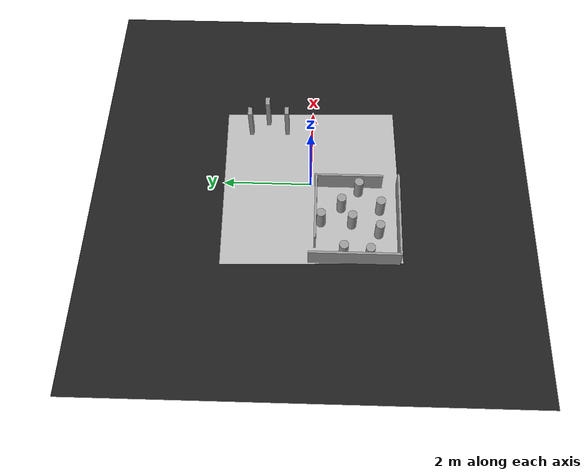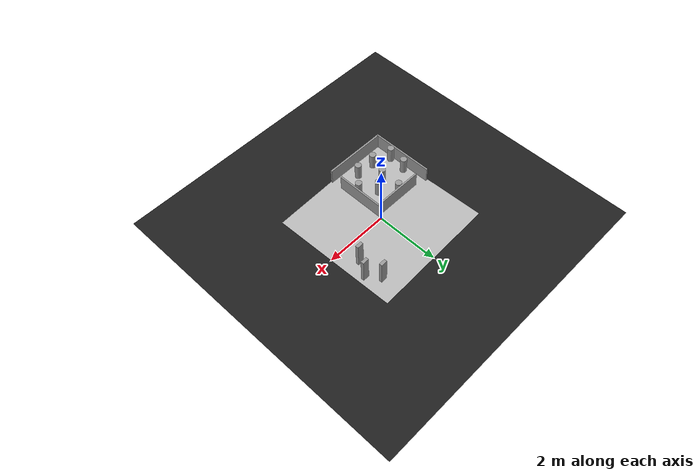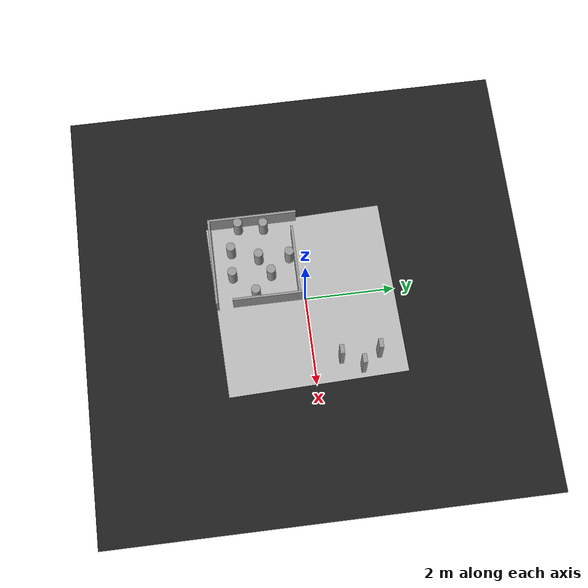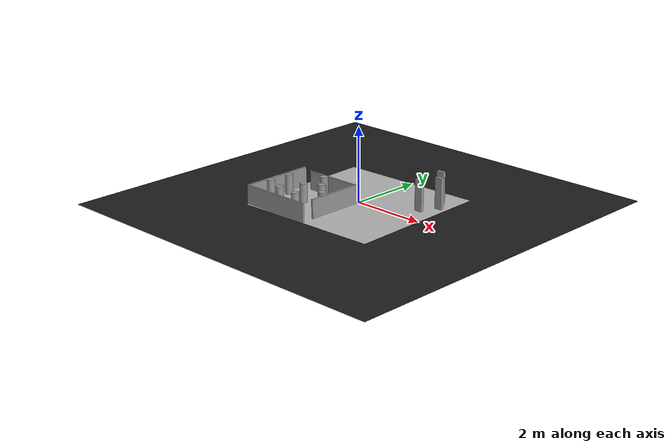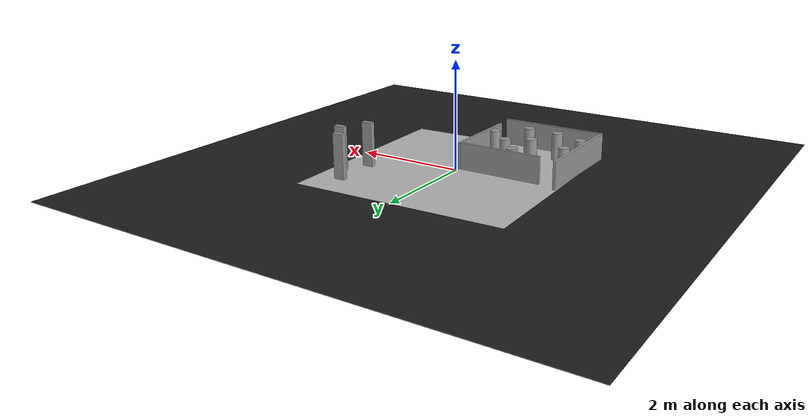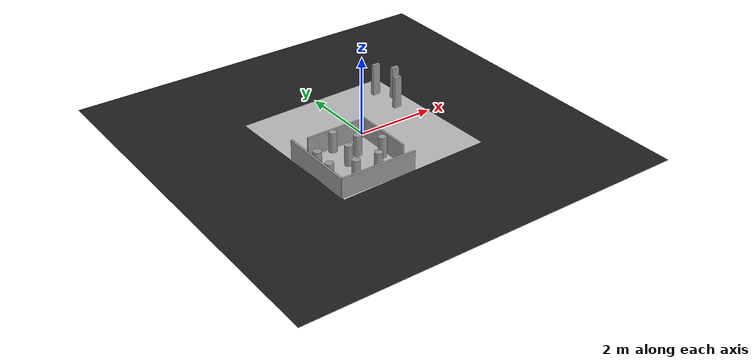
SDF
<sdf version="1.6">
 <world name="default">
  <scene>
   <ambient>0 0 0 1</ambient>
   <shadows>0</shadows>
   <grid>0</grid>
   <background>0.7 0.7 0.7 1</background>
  </scene>
  <model name="course">
   <static>1</static>
   <link name="course_link">
    <collision name="course_collision">
     <geometry><plane><normal>0 0 1</normal><size>4 4</size></plane></geometry>
     <surface><friction><ode><mu>100</mu><mu2>50</mu2></ode></friction></surface>
    </collision>
    <visual name="course_visual">
     <cast_shadows>0</cast_shadows>
     <geometry><plane><normal>0 0 1</normal><size>4 4</size></plane></geometry>
     <material>
      <script>
       <uri>model://turtlebot3_autorace/course/materials/scripts</uri>
       <uri>model://turtlebot3_autorace/course/materials/textures</uri>
       <name>course</name>
      </script>
     </material>
    </visual>
   </link>
   <pose>0 0 0 0 0 -1.54</pose>
  </model>
  <light name="sun" type="directional">
   <pose>0 0 10 0 -0 0</pose>
   <diffuse>0.8 0.8 0.8 1</diffuse>
   <specular>0.1 0.1 0.1 1</specular>
   <attenuation>
    <range>1000</range>
    <constant>0.9</constant>
    <linear>0.01</linear>
    <quadratic>0.001</quadratic>
   </attenuation>
   <direction>-0.5 0.5 -1</direction>
  </light>
  <model name="ground2">
   <pose>0 0 -0.008445 0 -0 0</pose>
   <static>1</static>
   <link name="ground">
    <collision name="ground_coll"><geometry><box><size>8 8 0.01</size></box></geometry></collision>
    <visual name="ground_vis">
     <geometry><box><size>10 10 0.01</size></box></geometry>
     <material>
      <script><uri>file://media/materials/scripts/gazebo.material</uri><name>Gazebo/FlatBlack</name></script>
     </material>
    </visual>
   </link>
  </model>
  <gravity>0 0 -9.8</gravity>
  <magnetic_field>6e-06 2.3e-05 -4.2e-05</magnetic_field>
  <atmosphere type="adiabatic"/>
  <physics name="default_physics" default="0" type="ode">
   <max_step_size>0.001</max_step_size>
   <real_time_factor>1</real_time_factor>
   <real_time_update_rate>1000</real_time_update_rate>
  </physics>
  <spherical_coordinates>
   <surface_model>EARTH_WGS84</surface_model>
   <latitude_deg>0</latitude_deg>
   <longitude_deg>0</longitude_deg>
   <elevation>0</elevation>
   <heading_deg>0</heading_deg>
  </spherical_coordinates>
  <light name="user_point_light_2" type="point">
   <pose>-0.948146 0.604519 1 0 -0 0</pose>
   <diffuse>0.5 0.5 0.5 1</diffuse>
   <specular>0.1 0.1 0.1 1</specular>
   <attenuation>
    <range>20</range>
    <constant>0.5</constant>
    <linear>0.01</linear>
    <quadratic>0.001</quadratic>
   </attenuation>
   <cast_shadows>0</cast_shadows>
   <direction>0 0 -1</direction>
  </light>
  <light name="user_point_light_6" type="point">
   <pose>1.63854 1.69565 1 0 -0 0</pose>
   <diffuse>0.5 0.5 0.5 1</diffuse>
   <specular>0.1 0.1 0.1 1</specular>
   <attenuation>
    <range>20</range>
    <constant>0.5</constant>
    <linear>0.01</linear>
    <quadratic>0.001</quadratic>
   </attenuation>
   <cast_shadows>0</cast_shadows>
   <direction>0 0 -1</direction>
  </light>
  <light name="user_point_light_7" type="point">
   <pose>0.42 -3.31 1 0 -0 0</pose>
   <diffuse>0.5 0.5 0.5 1</diffuse>
   <specular>0.1 0.1 0.1 1</specular>
   <attenuation>
    <range>20</range>
    <constant>0.5</constant>
    <linear>0.01</linear>
    <quadratic>0.001</quadratic>
   </attenuation>
   <cast_shadows>0</cast_shadows>
   <direction>0 0 -1</direction>
  </light>
  <light name="user_point_light_8" type="point">
   <pose>-1.8 1.5 1 0 -0 0</pose>
   <diffuse>0.5 0.5 0.5 1</diffuse>
   <specular>0.1 0.1 0.1 1</specular>
   <attenuation>
    <range>20</range>
    <constant>0.5</constant>
    <linear>0.01</linear>
    <quadratic>0.001</quadratic>
   </attenuation>
   <cast_shadows>0</cast_shadows>
   <direction>0 0 -1</direction>
  </light>
  <model name="tunnel_wall_3">
   <link name="Wall_12">
    <pose>-0.980783 0.049883 0 0 -0 1.5708</pose>
    <visual name="Wall_12_Visual">
     <pose>0 0 0.25 0 -0 0</pose>
     <geometry><box><size>2 0.05 0.5</size></box></geometry>
     <material>
      <script><uri>file://media/materials/scripts/gazebo.material</uri><name>Gazebo/Grey</name></script>
      <ambient>1 1 1 1</ambient>
      <diffuse>0.7 0.7 0.7 1</diffuse>
      <specular>0.01 0.01 0.01 1</specular>
      <emissive>0 0 0 1</emissive>
     </material>
    </visual>
    <collision name="Wall_12_Collision">
     <pose>0 0 0.25 0 -0 0</pose>
     <geometry><box><size>2 0.05 0.5</size></box></geometry>
     <surface>
      <friction>
       <ode><mu>1</mu><mu2>1</mu2><fdir1>0 0 0</fdir1><slip1>0</slip1><slip2>0</slip2></ode>
       <torsional>
        <coefficient>1</coefficient>
        <patch_radius>0</patch_radius>
        <surface_radius>0</surface_radius>
        <use_patch_radius>1</use_patch_radius>
        <ode><slip>0</slip></ode>
       </torsional>
      </friction>
      <bounce><restitution_coefficient>0</restitution_coefficient><threshold>1e+06</threshold></bounce>
      <contact>
       <collide_without_contact>0</collide_without_contact>
       <collide_without_contact_bitmask>1</collide_without_contact_bitmask>
       <collide_bitmask>1</collide_bitmask>
       <ode>
        <soft_cfm>0</soft_cfm>
        <soft_erp>0.2</soft_erp>
        <kp>1e+13</kp>
        <kd>1</kd>
        <max_vel>0.01</max_vel>
        <min_depth>0</min_depth>
       </ode>
       <bullet>
        <split_impulse>1</split_impulse>
        <split_impulse_penetration_threshold>-0.01</split_impulse_penetration_threshold>
        <soft_cfm>0</soft_cfm>
        <soft_erp>0.2</soft_erp>
        <kp>1e+13</kp>
        <kd>1</kd>
       </bullet>
      </contact>
     </surface>
    </collision>
   </link>
   <link name="Wall_14">
    <pose>0 -0.935438 0 0 -0 0</pose>
    <visual name="Wall_14_Visual">
     <pose>0 0 0.25 0 -0 0</pose>
     <geometry><box><size>2.00003 0.05 0.5</size></box></geometry>
     <material>
      <script><uri>file://media/materials/scripts/gazebo.material</uri><name>Gazebo/Grey</name></script>
      <ambient>1 1 1 1</ambient>
      <diffuse>0.7 0.7 0.7 1</diffuse>
      <specular>0.01 0.01 0.01 1</specular>
      <emissive>0 0 0 1</emissive>
     </material>
    </visual>
    <collision name="Wall_14_Collision">
     <pose>0 0 0.25 0 -0 0</pose>
     <geometry><box><size>2.00003 0.05 0.5</size></box></geometry>
     <surface>
      <friction>
       <ode><mu>1</mu><mu2>1</mu2><fdir1>0 0 0</fdir1><slip1>0</slip1><slip2>0</slip2></ode>
       <torsional>
        <coefficient>1</coefficient>
        <patch_radius>0</patch_radius>
        <surface_radius>0</surface_radius>
        <use_patch_radius>1</use_patch_radius>
        <ode><slip>0</slip></ode>
       </torsional>
      </friction>
      <bounce><restitution_coefficient>0</restitution_coefficient><threshold>1e+06</threshold></bounce>
      <contact>
       <collide_without_contact>0</collide_without_contact>
       <collide_without_contact_bitmask>1</collide_without_contact_bitmask>
       <collide_bitmask>1</collide_bitmask>
       <ode>
        <soft_cfm>0</soft_cfm>
        <soft_erp>0.2</soft_erp>
        <kp>1e+13</kp>
        <kd>1</kd>
        <max_vel>0.01</max_vel>
        <min_depth>0</min_depth>
       </ode>
       <bullet>
        <split_impulse>1</split_impulse>
        <split_impulse_penetration_threshold>-0.01</split_impulse_penetration_threshold>
        <soft_cfm>0</soft_cfm>
        <soft_erp>0.2</soft_erp>
        <kp>1e+13</kp>
        <kd>1</kd>
       </bullet>
      </contact>
     </surface>
    </collision>
   </link>
   <link name="Wall_16">
    <pose>0.943396 0.183669 0 0 -0 1.5708</pose>
    <inertial>
     <inertia><ixx>nan</ixx><ixy>0</ixy><ixz>0</ixz><iyy>nan</iyy><iyz>0</iyz><izz>nan</izz></inertia>
     <mass>0</mass>
    </inertial>
    <visual name="Wall_16_Visual">
     <pose>0 0 0.25 0 -0 0</pose>
     <geometry><box><size>1.53699 0.05 0.5</size></box></geometry>
     <material>
      <script><uri>file://media/materials/scripts/gazebo.material</uri><name>Gazebo/Grey</name></script>
      <ambient>1 1 1 1</ambient>
      <diffuse>0.7 0.7 0.7 1</diffuse>
      <specular>0.01 0.01 0.01 1</specular>
      <emissive>0 0 0 1</emissive>
     </material>
    </visual>
    <collision name="Wall_16_Collision">
     <pose>0 0 0.25 0 -0 0</pose>
     <geometry><box><size>1.53699 0.05 0.5</size></box></geometry>
     <surface>
      <friction>
       <ode><mu>1</mu><mu2>1</mu2><fdir1>0 0 0</fdir1><slip1>0</slip1><slip2>0</slip2></ode>
       <torsional>
        <coefficient>1</coefficient>
        <patch_radius>0</patch_radius>
        <surface_radius>0</surface_radius>
        <use_patch_radius>1</use_patch_radius>
        <ode><slip>0</slip></ode>
       </torsional>
      </friction>
      <bounce><restitution_coefficient>0</restitution_coefficient><threshold>1e+06</threshold></bounce>
      <contact>
       <collide_without_contact>0</collide_without_contact>
       <collide_without_contact_bitmask>1</collide_without_contact_bitmask>
       <collide_bitmask>1</collide_bitmask>
       <ode>
        <soft_cfm>0</soft_cfm>
        <soft_erp>0.2</soft_erp>
        <kp>1e+13</kp>
        <kd>1</kd>
        <max_vel>0.01</max_vel>
        <min_depth>0</min_depth>
       </ode>
       <bullet>
        <split_impulse>1</split_impulse>
        <split_impulse_penetration_threshold>-0.01</split_impulse_penetration_threshold>
        <soft_cfm>0</soft_cfm>
        <soft_erp>0.2</soft_erp>
        <kp>1e+13</kp>
        <kd>1</kd>
       </bullet>
      </contact>
     </surface>
    </collision>
   </link>
   <link name="Wall_17">
    <pose>0.15 0.915 0 0 -0 3.14159</pose>
    <visual name="Wall_17_Visual">
     <pose>0 0 0.25 0 -0 0</pose>
     <geometry><box><size>1.58 0.05 0.5</size></box></geometry>
     <material>
      <script><uri>file://media/materials/scripts/gazebo.material</uri><name>Gazebo/Grey</name></script>
      <ambient>1 1 1 1</ambient>
      <diffuse>0.7 0.7 0.7 1</diffuse>
      <specular>0.01 0.01 0.01 1</specular>
      <emissive>0 0 0 1</emissive>
     </material>
    </visual>
    <collision name="Wall_17_Collision">
     <pose>0 0 0.25 0 -0 0</pose>
     <geometry><box><size>1.58 0.05 0.5</size></box></geometry>
     <surface>
      <friction>
       <ode><mu>1</mu><mu2>1</mu2><fdir1>0 0 0</fdir1><slip1>0</slip1><slip2>0</slip2></ode>
       <torsional>
        <coefficient>1</coefficient>
        <patch_radius>0</patch_radius>
        <surface_radius>0</surface_radius>
        <use_patch_radius>1</use_patch_radius>
        <ode><slip>0</slip></ode>
       </torsional>
      </friction>
      <bounce><restitution_coefficient>0</restitution_coefficient><threshold>1e+06</threshold></bounce>
      <contact>
       <collide_without_contact>0</collide_without_contact>
       <collide_without_contact_bitmask>1</collide_without_contact_bitmask>
       <collide_bitmask>1</collide_bitmask>
       <ode>
        <soft_cfm>0</soft_cfm>
        <soft_erp>0.2</soft_erp>
        <kp>1e+13</kp>
        <kd>1</kd>
        <max_vel>0.01</max_vel>
        <min_depth>0</min_depth>
       </ode>
       <bullet>
        <split_impulse>1</split_impulse>
        <split_impulse_penetration_threshold>-0.01</split_impulse_penetration_threshold>
        <soft_cfm>0</soft_cfm>
        <soft_erp>0.2</soft_erp>
        <kp>1e+13</kp>
        <kd>1</kd>
       </bullet>
      </contact>
     </surface>
    </collision>
   </link>
   <static>1</static>
   <pose>-0.964697 -1.03574 0 0 -0 0</pose>
  </model>
  <model name="unit_cylinder_0">
   <pose>-1.25853 -1.53653 0.258187 0 -0 2e-06</pose>
   <link name="link">
    <inertial>
     <mass>1</mass>
     <inertia><ixx>0.145833</ixx><ixy>0</ixy><ixz>0</ixz><iyy>0.145833</iyy><iyz>0</iyz><izz>0.125</izz></inertia>
    </inertial>
    <collision name="collision">
     <geometry><cylinder><radius>0.101748</radius><length>0.516375</length></cylinder></geometry>
    </collision>
    <visual name="visual">
     <geometry><cylinder><radius>0.101748</radius><length>0.516375</length></cylinder></geometry>
     <material>
      <script><name>Gazebo/Grey</name><uri>file://media/materials/scripts/gazebo.material</uri></script>
     </material>
    </visual>
   </link>
  </model>
  <model name="unit_cylinder_0_clone">
   <pose>-1.81873 -1.32189 0.258179 0 0 -1.5e-05</pose>
   <link name="link">
    <inertial>
     <mass>1</mass>
     <inertia><ixx>0.145833</ixx><ixy>0</ixy><ixz>0</ixz><iyy>0.145833</iyy><iyz>0</iyz><izz>0.125</izz></inertia>
    </inertial>
    <collision name="collision">
     <geometry><cylinder><radius>0.101748</radius><length>0.516376</length></cylinder></geometry>
    </collision>
    <visual name="visual">
     <geometry><cylinder><radius>0.101748</radius><length>0.516376</length></cylinder></geometry>
     <material>
      <script><name>Gazebo/Grey</name><uri>file://media/materials/scripts/gazebo.material</uri></script>
     </material>
    </visual>
   </link>
  </model>
  <model name="unit_cylinder_0_clone_0">
   <pose>-0.998698 -0.247498 0.258178 0 -0 1e-06</pose>
   <link name="link">
    <inertial>
     <mass>1</mass>
     <inertia><ixx>0.145833</ixx><ixy>0</ixy><ixz>0</ixz><iyy>0.145833</iyy><iyz>0</iyz><izz>0.125</izz></inertia>
    </inertial>
    <collision name="collision">
     <geometry><cylinder><radius>0.101748</radius><length>0.516376</length></cylinder></geometry>
    </collision>
    <visual name="visual">
     <geometry><cylinder><radius>0.101748</radius><length>0.516376</length></cylinder></geometry>
     <material>
      <script><name>Gazebo/Grey</name><uri>file://media/materials/scripts/gazebo.material</uri></script>
     </material>
    </visual>
   </link>
  </model>
  <model name="unit_cylinder_0_clone_1">
   <pose>-0.622199 -0.695755 0.258179 0 -0 2e-06</pose>
   <link name="link">
    <inertial>
     <mass>1</mass>
     <inertia><ixx>0.145833</ixx><ixy>0</ixy><ixz>0</ixz><iyy>0.145833</iyy><iyz>0</iyz><izz>0.125</izz></inertia>
    </inertial>
    <collision name="collision">
     <geometry><cylinder><radius>0.101748</radius><length>0.516376</length></cylinder></geometry>
    </collision>
    <visual name="visual">
     <geometry><cylinder><radius>0.101748</radius><length>0.516376</length></cylinder></geometry>
     <material>
      <script><name>Gazebo/Grey</name><uri>file://media/materials/scripts/gazebo.material</uri></script>
     </material>
    </visual>
   </link>
  </model>
  <model name="unit_cylinder_0_clone_2">
   <pose>-0.668276 -1.56489 0.258187 0 -0 2e-06</pose>
   <link name="link">
    <inertial>
     <mass>1</mass>
     <inertia><ixx>0.145833</ixx><ixy>0</ixy><ixz>0</ixz><iyy>0.145833</iyy><iyz>0</iyz><izz>0.125</izz></inertia>
    </inertial>
    <collision name="collision">
     <geometry><cylinder><radius>0.101748</radius><length>0.516376</length></cylinder></geometry>
    </collision>
    <visual name="visual">
     <geometry><cylinder><radius>0.101748</radius><length>0.516376</length></cylinder></geometry>
     <material>
      <script><name>Gazebo/Grey</name><uri>file://media/materials/scripts/gazebo.material</uri></script>
     </material>
    </visual>
   </link>
  </model>
  <model name="unit_cylinder_0_clone_3">
   <pose>-0.198865 -1.0834 0.258179 0 -0 2e-06</pose>
   <link name="link">
    <inertial>
     <mass>1</mass>
     <inertia><ixx>0.145833</ixx><ixy>0</ixy><ixz>0</ixz><iyy>0.145833</iyy><iyz>0</iyz><izz>0.125</izz></inertia>
    </inertial>
    <collision name="collision">
     <geometry><cylinder><radius>0.101748</radius><length>0.516376</length></cylinder></geometry>
    </collision>
    <visual name="visual">
     <geometry><cylinder><radius>0.101748</radius><length>0.516376</length></cylinder></geometry>
     <material>
      <script><name>Gazebo/Grey</name><uri>file://media/materials/scripts/gazebo.material</uri></script>
     </material>
    </visual>
   </link>
  </model>
  <model name="unit_cylinder_0_clone_4">
   <pose>-1.0337 -0.935358 0.258188 0 -0 2e-06</pose>
   <link name="link">
    <inertial>
     <mass>1</mass>
     <inertia><ixx>0.145833</ixx><ixy>0</ixy><ixz>0</ixz><iyy>0.145833</iyy><iyz>0</iyz><izz>0.125</izz></inertia>
    </inertial>
    <collision name="collision">
     <geometry><cylinder><radius>0.101748</radius><length>0.516376</length></cylinder></geometry>
    </collision>
    <visual name="visual">
     <geometry><cylinder><radius>0.101748</radius><length>0.516376</length></cylinder></geometry>
     <material>
      <script><name>Gazebo/Grey</name><uri>file://media/materials/scripts/gazebo.material</uri></script>
     </material>
    </visual>
   </link>
  </model>
  <model name="unit_cylinder_0_clone_5">
   <pose>-1.7593 -0.751353 0.258187 0 -0 2e-06</pose>
   <link name="link">
    <inertial>
     <mass>1</mass>
     <inertia><ixx>0.145833</ixx><ixy>0</ixy><ixz>0</ixz><iyy>0.145833</iyy><iyz>0</iyz><izz>0.125</izz></inertia>
    </inertial>
    <collision name="collision">
     <geometry><cylinder><radius>0.101748</radius><length>0.516376</length></cylinder></geometry>
    </collision>
    <visual name="visual">
     <geometry><cylinder><radius>0.101748</radius><length>0.516376</length></cylinder></geometry>
     <material>
      <script><name>Gazebo/Grey</name><uri>file://media/materials/scripts/gazebo.material</uri></script>
     </material>
    </visual>
   </link>
  </model>
  <model name="unit_box_0_clone">
   <pose>1.4634 1.45356 0.41185 -0 5e-06 0.013871</pose>
   <link name="link">
    <inertial>
     <mass>1</mass>
     <inertia>
      <ixx>0.166667</ixx>
      <ixy>0</ixy>
      <ixz>0</ixz>
      <iyy>0.166667</iyy>
      <iyz>0</iyz>
      <izz>0.166667</izz>
     </inertia>
    </inertial>
    <collision name="collision">
     <geometry><box><size>0.201614 0.0962971 0.823701</size></box></geometry>
    </collision>
    <visual name="visual">
     <geometry><box><size>0.201614 0.0962971 0.823701</size></box></geometry>
     <material>
      <script><name>Gazebo/Grey</name><uri>file://media/materials/scripts/gazebo.material</uri></script>
     </material>
    </visual>
   </link>
  </model>
  <model name="unit_box_0_clone_clone">
   <pose>1.75319 1.06032 0.41185 0 1e-06 0.013563</pose>
   <link name="link">
    <inertial>
     <mass>1</mass>
     <inertia>
      <ixx>0.166667</ixx>
      <ixy>0</ixy>
      <ixz>0</ixz>
      <iyy>0.166667</iyy>
      <iyz>0</iyz>
      <izz>0.166667</izz>
     </inertia>
    </inertial>
    <collision name="collision">
     <geometry><box><size>0.201614 0.096297 0.823701</size></box></geometry>
    </collision>
    <visual name="visual">
     <geometry><box><size>0.201614 0.096297 0.823701</size></box></geometry>
     <material>
      <script><name>Gazebo/Grey</name><uri>file://media/materials/scripts/gazebo.material</uri></script>
     </material>
    </visual>
   </link>
  </model>
  <model name="unit_box_0_clone_clone_0">
   <pose>1.49031 0.605459 0.41185 0 -1e-06 0.013471</pose>
   <link name="link">
    <inertial>
     <mass>1</mass>
     <inertia>
      <ixx>0.166667</ixx>
      <ixy>0</ixy>
      <ixz>0</ixz>
      <iyy>0.166667</iyy>
      <iyz>0</iyz>
      <izz>0.166667</izz>
     </inertia>
    </inertial>
    <collision name="collision">
     <geometry><box><size>0.201614 0.096297 0.823701</size></box></geometry>
    </collision>
    <visual name="visual">
     <geometry><box><size>0.201614 0.096297 0.823701</size></box></geometry>
     <material>
      <script><name>Gazebo/Grey</name><uri>file://media/materials/scripts/gazebo.material</uri></script>
     </material>
    </visual>
   </link>
  </model>
 </world>
</sdf>
